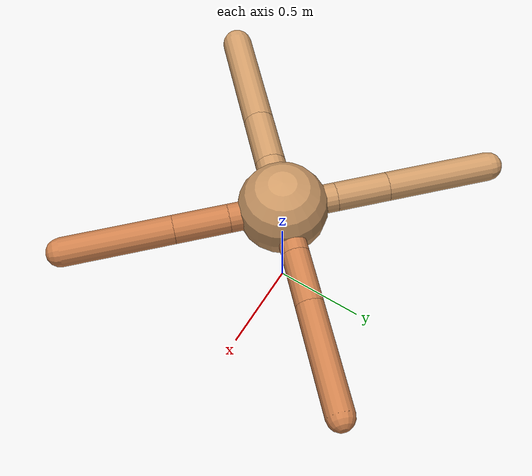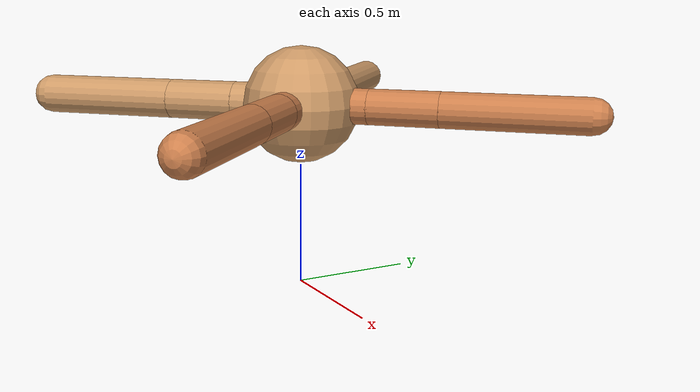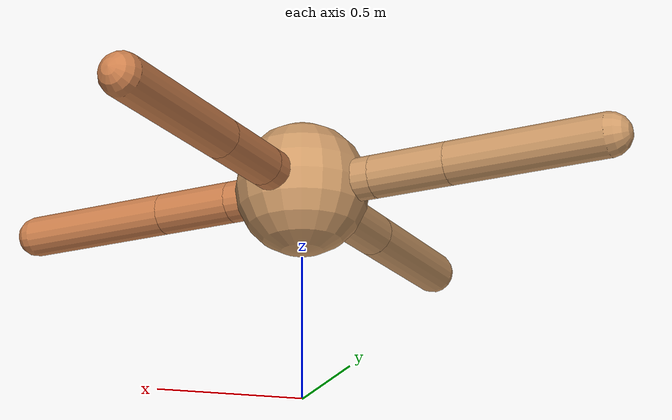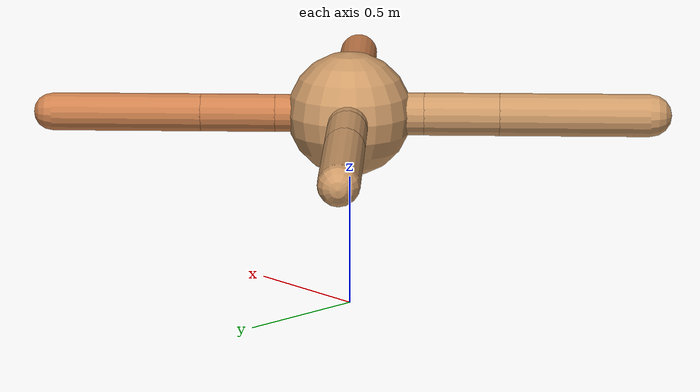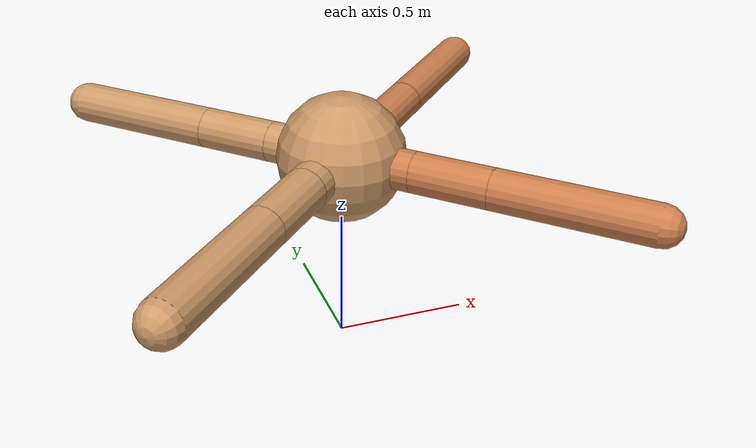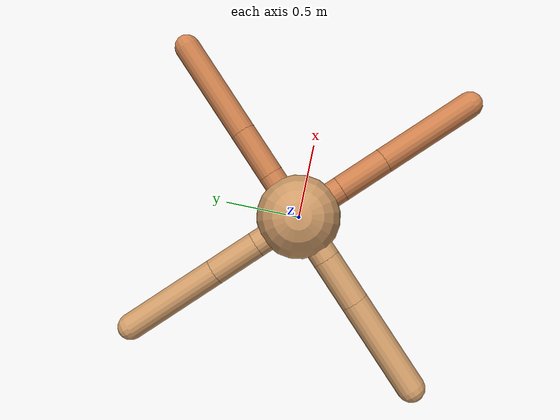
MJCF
<?xml version="1.0" ?>
<mujoco model="ant">

	<compiler angle="degree" coordinate="local" inertiafromgeom="true"/>

	<option integrator="RK4" timestep="0.01"/>

	<custom>

		<numeric data="0.0 0.0 0.55 1.0 0.0 0.0 0.0 0.0 1.0 0.0 -1.0 0.0 -1.0 0.0 1.0" name="init_qpos"/>

	</custom>

	<default>

		<joint armature="1" damping="1" limited="true"/>

		<geom conaffinity="0" condim="3" density="5.0" friction="1.5 0.1 0.1" margin="0.01" rgba="0.8 0.6 0.4 1"/>

	</default>

	<worldbody>

		<body name="torso" pos="0 0 0.75">

			<geom name="torso_geom" pos="0 0 0" size="0.23723290528848803" type="sphere"/>

			<!--joint armature="0" damping="0" limited="false" margin="0.01" name="root" pos="0 0 0" type="free"/-->

			<body name="front_left_leg" pos="0 0 0">

				<geom fromto="0 0 0 0.2 0.2 0" name="aux_1_geom" size="0.072106064608427" type="capsule" rgba=".8 .5 .3 1"/>

				<body name="aux_1" pos="0.2 0.2 0">

					<joint axis="0 0 1" name="hip_1" pos="0.0 0.0 0.0" range="-40 40" type="hinge"/>

					<geom fromto="0 0 0 0.20058728144300475 0.20058728144300475 0" name="left_leg_geom" size="0.072106064608427" type="capsule" rgba=".8 .5 .3 1"/>

					<body pos="0.20058728144300475 0.20058728144300475 0" name="front_left_foot">

						<joint axis="-1 1 0" name="ankle_1" pos="0.0 0.0 0.0" range="30 100" type="hinge"/>

						<geom fromto="0 0 0 0.4011745628860095 0.4011745628860095 0" name="left_ankle_geom" size="0.072106064608427" type="capsule" rgba=".8 .5 .3 1"/>

					</body>

				</body>

			</body>

			<body name="front_right_leg" pos="0 0 0">

				<geom fromto="0 0 0 -0.2 0.2 0" name="aux_2_geom" size="0.07598277462933806" type="capsule"/>

				<body name="aux_2" pos="-0.2 0.2 0">

					<joint axis="0 0 1" name="hip_2" pos="0.0 0.0 0.0" range="-40 40" type="hinge"/>

					<geom fromto="0 0 0 -0.19675716731133322 0.19675716731133322 0" name="right_leg_geom" size="0.07598277462933806" type="capsule"/>

					<body pos="-0.19675716731133322 0.19675716731133322 0" name="front_right_foot">

						<joint axis="1 1 0" name="ankle_2" pos="0.0 0.0 0.0" range="-100 -30" type="hinge"/>

						<geom fromto="0 0 0 -0.39351433462266644 0.39351433462266644 0" name="right_ankle_geom" size="0.07598277462933806" type="capsule"/>

					</body>

				</body>

			</body>

			<body name="left_back_leg" pos="0 0 0">

				<geom fromto="0 0 0 -0.2 -0.2 0" name="aux_3_geom" size="0.0815257659107077" type="capsule"/>

				<body name="aux_3" pos="-0.2 -0.2 0">

					<joint axis="0 0 1" name="hip_3" pos="0.0 0.0 0.0" range="-40 40" type="hinge"/>

					<geom fromto="0 0 0 -0.20283703089720115 -0.20283703089720115 0" name="back_leg_geom" size="0.0815257659107077" type="capsule"/>

					<body pos="-0.20283703089720115 -0.20283703089720115 0" name="left_back_foot">

						<joint axis="-1 1 0" name="ankle_3" pos="0.0 0.0 0.0" range="-100 -30" type="hinge"/>

						<geom fromto="0 0 0 -0.4056740617944023 -0.4056740617944023 0" name="third_ankle_geom" size="0.0815257659107077" type="capsule"/>

					</body>

				</body>

			</body>

			<body name="right_back_leg" pos="0 0 0">

				<geom fromto="0 0 0 0.2 -0.2 0" name="aux_4_geom" size="0.07505772206294983" type="capsule" rgba=".8 .5 .3 1"/>

				<body name="aux_4" pos="0.2 -0.2 0">

					<joint axis="0 0 1" name="hip_4" pos="0.0 0.0 0.0" range="-40 40" type="hinge"/>

					<geom fromto="0 0 0 0.2027404217778963 -0.2027404217778963 0" name="rightback_leg_geom" size="0.07505772206294983" type="capsule" rgba=".8 .5 .3 1"/>

					<body pos="0.2027404217778963 -0.2027404217778963 0" name="right_back_foot">

						<joint axis="1 1 0" name="ankle_4" pos="0.0 0.0 0.0" range="30 100" type="hinge"/>

						<geom fromto="0 0 0 0.4054808435557926 -0.4054808435557926 0" name="fourth_ankle_geom" size="0.07505772206294983" type="capsule" rgba=".8 .5 .3 1"/>

					</body>

				</body>

			</body>

		</body>

	</worldbody>

	<actuator>

		<motor ctrllimited="true" ctrlrange="-1.0 1.0" joint="hip_4" gear="150"/>

		<motor ctrllimited="true" ctrlrange="-1.0 1.0" joint="ankle_4" gear="150"/>

		<motor ctrllimited="true" ctrlrange="-1.0 1.0" joint="hip_1" gear="150"/>

		<motor ctrllimited="true" ctrlrange="-1.0 1.0" joint="ankle_1" gear="150"/>

		<motor ctrllimited="true" ctrlrange="-1.0 1.0" joint="hip_2" gear="150"/>

		<motor ctrllimited="true" ctrlrange="-1.0 1.0" joint="ankle_2" gear="150"/>

		<motor ctrllimited="true" ctrlrange="-1.0 1.0" joint="hip_3" gear="150"/>

		<motor ctrllimited="true" ctrlrange="-1.0 1.0" joint="ankle_3" gear="150"/>

	</actuator>

</mujoco>
